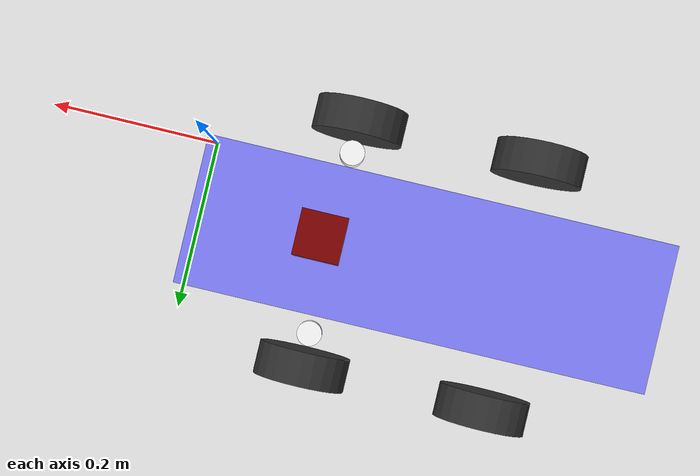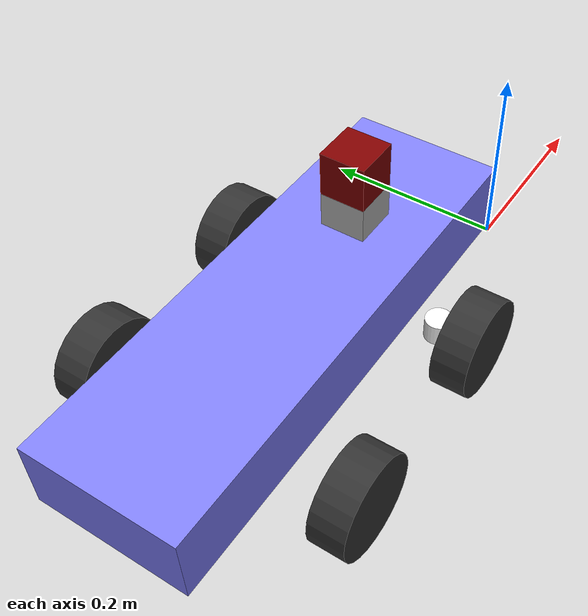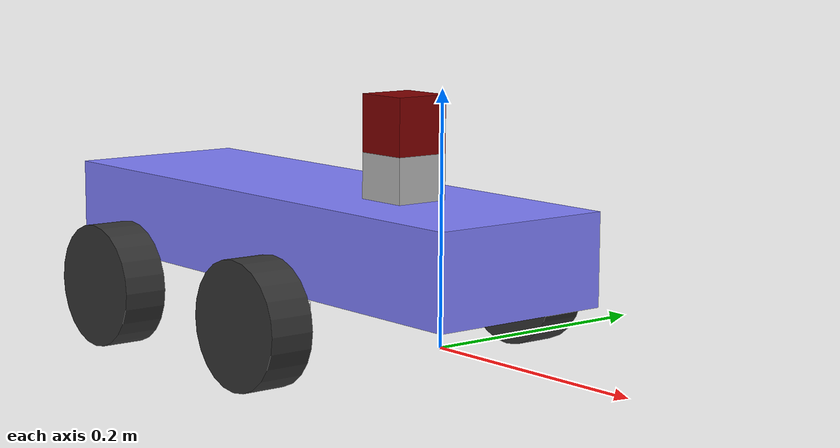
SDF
<?xml version="1.0" ?>
<sdf version="1.9">
    <model name="f110_car" canonical_link="base_link">

        <link name='base_link'>
            <gz_frame_id>base_link</gz_frame_id>
            <pose>-0.27 0.085 0.05 0 0 0</pose>
            <visual name='visual'>
                <geometry>
                    <box>
                        <size>0.54 0.17 0.08</size>
                    </box>
                </geometry>
                <material>
                    <ambient>0.5 0.5 1.0 1</ambient>
                    <diffuse>0.5 0.5 1.0 1</diffuse>
                    <specular>0.0 0.0 1.0 1</specular>
                </material>
            </visual>
            <collision name='collision'>
                <geometry>
                    <box>
                        <size>0.54 0.17 0.08</size>
                    </box>
                </geometry>
            </collision>
            <sensor name="imu_sensor" type="imu">
                <always_on>1</always_on>
                <update_rate>1</update_rate>
                <visualize>true</visualize>
                <topic>imu</topic>
            </sensor>
        </link>

        <link name='front_left_wheel'>
            <gz_frame_id>front_left_wheel</gz_frame_id>
            <pose relative_to="base_link">0.11 0.15 -0.05 -1.5707 0 0</pose>
            <inertial>
                <mass>2</mass>
                <inertia>
                    <ixx>0.145833</ixx>
                    <ixy>0</ixy>
                    <ixz>0</ixz>
                    <iyy>0.145833</iyy>
                    <iyz>0</iyz>
                    <izz>0.125</izz>
                </inertia>
            </inertial>
            <visual name='visual'>
                <geometry>
                    <cylinder>
                        <length>0.04</length>
                        <radius>0.055</radius>
                    </cylinder>
                </geometry>
                <material>
                    <ambient>0.2 0.2 0.2 1</ambient>
                    <diffuse>0.2 0.2 0.2 1</diffuse>
                    <specular>0.2 0.2 0.2 1</specular>
                </material>
            </visual>
            <collision name='collision'>
                <geometry>
                    <cylinder>
                        <length>0.04</length>
                        <radius>0.055</radius>
                    </cylinder>
                </geometry>
                <surface>
                    <friction>
                        <ode>
                            <mu>0.5</mu>
                            <mu2>1.0</mu2>
                            <fdir1>0 0 1</fdir1>
                        </ode>
                        <bullet>
                            <friction>0.5</friction>
                            <friction2>1</friction2>
                            <rolling_friction>0.1</rolling_friction>
                        </bullet>
                    </friction>
                </surface>
            </collision>
        </link>

        <link name='rear_left_wheel'>
            <pose relative_to="base_link">-0.11 0.15 -0.05 -1.5707 0 0</pose>
            <inertial>
                <mass>2</mass>
                <inertia>
                    <ixx>0.145833</ixx>
                    <ixy>0</ixy>
                    <ixz>0</ixz>
                    <iyy>0.145833</iyy>
                    <iyz>0</iyz>
                    <izz>0.125</izz>
                </inertia>
            </inertial>
            <visual name='visual'>
                <geometry>
                    <cylinder>
                        <length>0.04</length>
                        <radius>0.055</radius>
                    </cylinder>
                </geometry>
                <material>
                    <ambient>0.2 0.2 0.2 1</ambient>
                    <diffuse>0.2 0.2 0.2 1</diffuse>
                    <specular>0.2 0.2 0.2 1</specular>
                </material>
            </visual>
            <collision name='collision'>
                <geometry>
                    <cylinder>
                        <length>0.04</length>
                        <radius>0.055</radius>
                    </cylinder>
                </geometry>
                <surface>
                    <friction>
                        <ode>
                            <mu>0.5</mu>
                            <mu2>1.0</mu2>
                            <fdir1>0 0 1</fdir1>
                        </ode>
                        <bullet>
                            <friction>0.5</friction>
                            <friction2>1</friction2>
                            <rolling_friction>0.5</rolling_friction>
                        </bullet>
                    </friction>
                </surface>
            </collision>
        </link>

        <link name='front_right_wheel'>
            <pose relative_to="base_link">0.11 -0.15 -0.05 -1.5707 0 0</pose>
            <inertial>
                <mass>2</mass>
                <inertia>
                    <ixx>0.145833</ixx>
                    <ixy>0</ixy>
                    <ixz>0</ixz>
                    <iyy>0.145833</iyy>
                    <iyz>0</iyz>
                    <izz>0.125</izz>
                </inertia>
            </inertial>
            <visual name='visual'>
                <geometry>
                    <cylinder>
                        <length>0.04</length>
                        <radius>0.055</radius>
                    </cylinder>
                </geometry>
                <material>
                    <ambient>0.2 0.2 0.2 1</ambient>
                    <diffuse>0.2 0.2 0.2 1</diffuse>
                    <specular>0.2 0.2 0.2 1</specular>
                </material>
            </visual>
            <collision name='collision'>
                <geometry>
                    <cylinder>
                        <length>0.04</length>
                        <radius>0.055</radius>
                    </cylinder>
                </geometry>
                <surface>
                    <friction>
                        <ode>
                            <mu>0.5</mu>
                            <mu2>1.0</mu2>
                            <fdir1>0 0 1</fdir1>
                        </ode>
                        <bullet>
                            <friction>0.5</friction>
                            <friction2>1</friction2>
                            <rolling_friction>0.1</rolling_friction>
                        </bullet>
                    </friction>
                </surface>
            </collision>
        </link>

        <link name='rear_right_wheel'>
            <pose relative_to="base_link">-0.11 -0.15 -0.05 -1.5707 0 0</pose>
            <inertial>
                <mass>2</mass>
                <inertia>
                    <ixx>0.145833</ixx>
                    <ixy>0</ixy>
                    <ixz>0</ixz>
                    <iyy>0.145833</iyy>
                    <iyz>0</iyz>
                    <izz>0.125</izz>
                </inertia>
            </inertial>
            <visual name='visual'>
                <geometry>
                    <cylinder>
                        <length>0.04</length>
                        <radius>0.055</radius>
                    </cylinder>
                </geometry>
                <material>
                    <ambient>0.2 0.2 0.2 1</ambient>
                    <diffuse>0.2 0.2 0.2 1</diffuse>
                    <specular>0.2 0.2 0.2 1</specular>
                </material>
            </visual>
            <collision name='collision'>
                <geometry>
                    <cylinder>
                        <length>0.04</length>
                        <radius>0.055</radius>
                    </cylinder>
                </geometry>
                <surface>
                    <friction>
                        <ode>
                            <mu>0.5</mu>
                            <mu2>1.0</mu2>
                            <fdir1>0 0 1</fdir1>
                        </ode>
                        <bullet>
                            <friction>0.5</friction>
                            <friction2>1</friction2>
                            <rolling_friction>0.5</rolling_friction>
                        </bullet>
                    </friction>
                </surface>
            </collision>
        </link>

        <link name="front_left_wheel_steering_link">
            <pose relative_to="front_left_wheel">-0 0 -0.04 1.570 0 0</pose>
            <inertial>
                <mass>0.5</mass>
                <inertia>
                    <ixx>0.0153</ixx>
                    <iyy>0.025</iyy>
                    <izz>0.0153</izz>
                </inertia>
            </inertial>
            <visual name="steering_link_visual">
                <pose>0 0 0 0 0 0</pose>
                <geometry>
                    <cylinder>
                        <length>0.025</length>
                        <radius>0.015</radius>
                    </cylinder>
                </geometry>
                <material>
                    <ambient>1 1 1</ambient>
                    <diffuse>1 1 1</diffuse>
                </material>
            </visual>
        </link>

        <link name="front_right_wheel_steering_link">
            <pose relative_to="front_right_wheel">-0 0 0.04 1.570 0 0</pose>
            <inertial>
                <mass>0.5</mass>
                <inertia>
                    <ixx>0.0153</ixx>
                    <iyy>0.025</iyy>
                    <izz>0.0153</izz>
                </inertia>
            </inertial>
            <visual name="steering_link_visual">
                <pose>0 0 0 0 0 0</pose>
                <geometry>
                    <cylinder>
                        <length>0.025</length>
                        <radius>0.015</radius>
                    </cylinder>
                </geometry>
                <material>
                    <ambient>1 1 1</ambient>
                    <diffuse>1 1 1</diffuse>
                </material>
            </visual>
        </link>

        <joint name="front_left_wheel_steering_joint" type="revolute">
            <child>front_left_wheel_steering_link</child>
            <parent>base_link</parent>
            <axis>
                <xyz>0 0 1</xyz>
                <limit>
                    <lower>-0.6</lower>
                    <upper>+0.6</upper>
                    <velocity>1.0</velocity>
                    <effort>25</effort>
                </limit>
                <use_parent_model_frame>1</use_parent_model_frame>
            </axis>
        </joint>

        <joint name="front_right_wheel_steering_joint" type="revolute">
            <parent>base_link</parent>
            <child>front_right_wheel_steering_link</child>
            <axis>
                <xyz>0 0 1</xyz>
                <limit>
                    <lower>-0.6</lower>
                    <upper>+0.6</upper>
                    <velocity>1.0</velocity>
                    <effort>25</effort>
                </limit>
            </axis>
        </joint>

        <joint name='front_left_wheel_joint' type='revolute'>
            <parent>front_left_wheel_steering_link</parent>
            <child>front_left_wheel</child>
            <axis>
                <xyz>0 0 1</xyz>
                <limit>
                    <lower>-1.79769e+308</lower>
                    <upper>1.79769e+308</upper>
                </limit>
            </axis>
        </joint>

        <joint name='front_right_wheel_joint' type='revolute'>
            <parent>front_right_wheel_steering_link</parent>
            <child>front_right_wheel</child>
            <axis>
                <xyz>0 0 1</xyz>
                <limit>
                    <lower>-1.79769e+308</lower>
                    <upper>1.79769e+308</upper>
                </limit>
            </axis>
        </joint>

        <joint name='rear_left_wheel_joint' type='revolute'>
            <parent>base_link</parent>
            <child>rear_left_wheel</child>
            <axis>
                <xyz>0 0 1</xyz>
                <limit>
                    <lower>-1.79769e+308</lower>
                    <upper>1.79769e+308</upper>
                </limit>
            </axis>
        </joint>

        <joint name='rear_right_wheel_joint' type='revolute'>
            <parent>base_link</parent>
            <child>rear_right_wheel</child>
            <axis>
                <xyz>0 0 1</xyz>
                <limit>
                    <lower>-1.79769e+308</lower>
                    <upper>1.79769e+308</upper>
                </limit>
            </axis>
        </joint>
        <!-- SENSORS -->
        <link name="camera_link">
            <pose relative_to="lidar_link">0 0 0.05 0 0 0</pose>
            <inertial>
                <mass>0.1</mass>
                <inertia>
                    <ixx>0.000166667</ixx>
                    <iyy>0.000166667</iyy>
                    <izz>0.000166667</izz>
                </inertia>
            </inertial>
            <collision name="collision">
                <geometry>
                    <box>
                        <size>0.05 0.05 0.05</size>
                    </box>
                </geometry>
            </collision>
            <visual name="visual">
                <material>
                    <ambient>0.5 0 0 1</ambient>
                    <diffuse>0.5 0 0 1</diffuse>
                </material>
                <geometry>
                    <box>
                        <size>0.05 0.05 0.05</size>
                    </box>
                </geometry>
            </visual>

            <sensor name="camera" type="camera">
                <camera>
                    <horizontal_fov>1.204277</horizontal_fov>
                    <vertical_fov>0.7330383</vertical_fov>
                    <image>
                        <width>1280</width>
                        <height>720</height>
                    </image>
                    <clip>
                        <near>0.1</near>
                        <far>100</far>
                    </clip>
                </camera>
                <always_on>1</always_on>
                <update_rate>5</update_rate>
                <visualize>true</visualize>
                <topic>camera</topic>
            </sensor>
        <sensor name="depth_camera1" type="depth_camera">
          <update_rate>5</update_rate>
          <topic>depth_camera</topic>
              <camera>
                <horizontal_fov>1.518436</horizontal_fov>
                <vertical_fov>1.012291</vertical_fov>
                <image>
                  <width>1280</width>
                  <height>720</height>
                  <format>R_FLOAT32</format>
                </image>
                <clip>
                  <near>0.28</near>
                  <far>10.0</far>
                </clip>
              </camera>
          </sensor>
        </link>

        <link name="lidar_link">
            <pose relative_to="base_link">0.12 0 0.055 0 0 0</pose>
            <inertial>
                <mass>0.1</mass>
                <inertia>
                    <ixx>0.000166667</ixx>
                    <iyy>0.000166667</iyy>
                    <izz>0.000166667</izz>
                </inertia>
            </inertial>
            <collision name="collision">
                <geometry>
                    <box>
                        <size>0.05 0.05 0.05</size>
                    </box>
                </geometry>
            </collision>
            <visual name="visual">
                <geometry>
                    <box>
                        <size>0.05 0.05 0.05</size>
                    </box>
                </geometry>
            </visual>
            <sensor name='gpu_lidar' type='gpu_lidar'>"
            <topic>scan</topic>
            <update_rate>30</update_rate>
            <lidar>
                <scan>
                    <horizontal>
                        <samples>1081</samples>
                        <resolution>1</resolution>
                        <min_angle>-2.356194</min_angle>
                        <max_angle>2.356194</max_angle>
                    </horizontal>
                    <vertical>
                        <samples>1</samples>
                        <resolution>0.01</resolution>
                        <min_angle>0</min_angle>
                        <max_angle>0</max_angle>
                    </vertical>
                </scan>
                <range>
                    <min>0.06</min>
                    <max>10.0</max>
                    <resolution>0.01</resolution>
                </range>
            </lidar>
            <always_on>1</always_on>
            <visualize>true</visualize>
            <gz_frame_id>lidar_link</gz_frame_id>
        </sensor>
    </link>

    <joint name="camera_joint" type="fixed">
        <parent>base_link</parent>
        <child>camera_link</child>
    </joint>
    <joint name="lidar_joint" type="fixed">
        <parent>base_link</parent>
        <child>lidar_link</child>
    </joint>

    <plugin
        filename="gz-sim-ackermann-steering-system"
        name="gz::sim::systems::AckermannSteering">
        <topic>cmd_vel</topic>
        <odom_topic>odom</odom_topic>
        <child_frame_id>base_link</child_frame_id>
        <left_joint>front_left_wheel_joint</left_joint>
        <left_joint>rear_left_wheel_joint</left_joint>
        <right_joint>front_right_wheel_joint</right_joint>
        <right_joint>rear_right_wheel_joint</right_joint>
        <left_steering_joint>front_left_wheel_steering_joint</left_steering_joint>
        <right_steering_joint>front_right_wheel_steering_joint</right_steering_joint>
        <kingpin_width>.2</kingpin_width>
        <steering_limit>0.5</steering_limit>
        <wheel_base>0.3</wheel_base>
        <wheel_separation>.22</wheel_separation>
        <wheel_radius>0.055</wheel_radius>
        <min_velocity>-0.5</min_velocity>
        <max_velocity>0.5</max_velocity>
        <min_acceleration>-0.25</min_acceleration>
        <max_acceleration>0.25</max_acceleration>
    </plugin>
</model>
</sdf>
